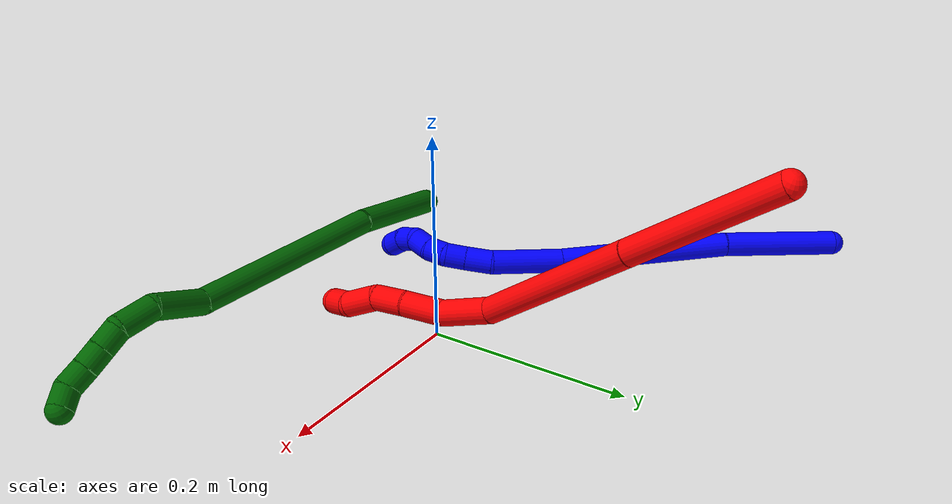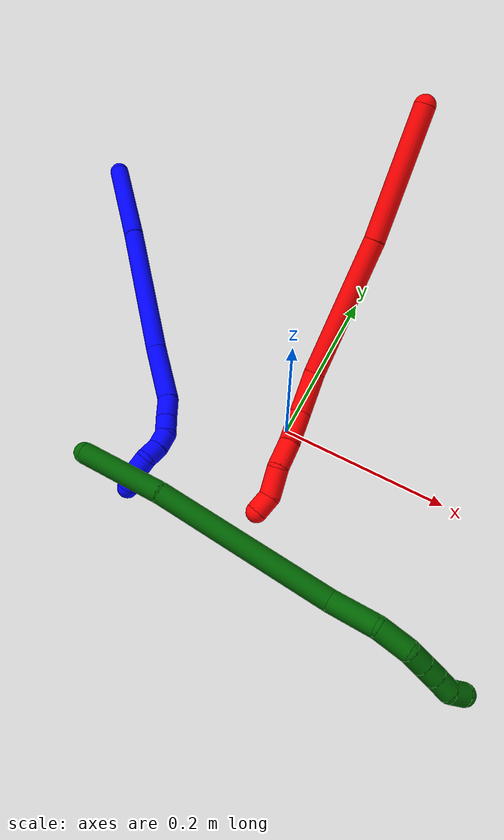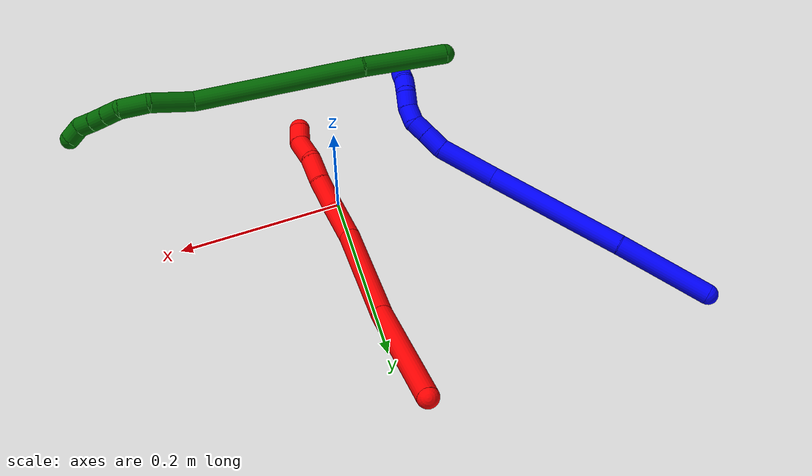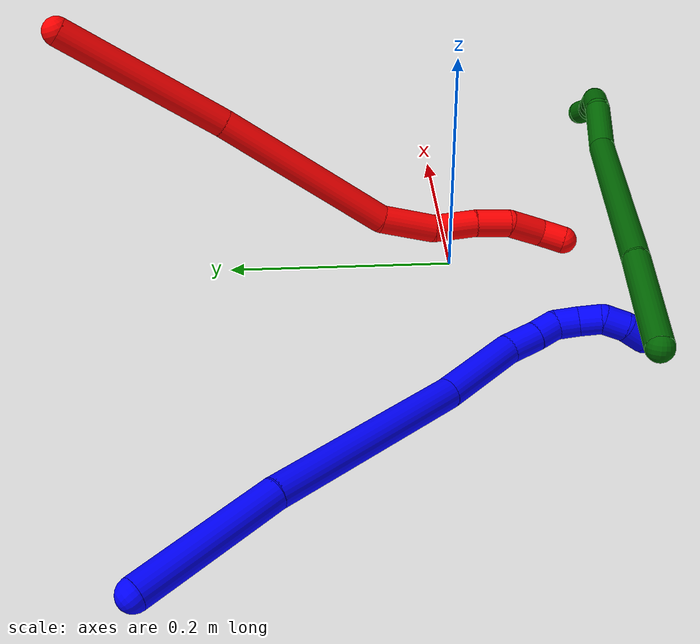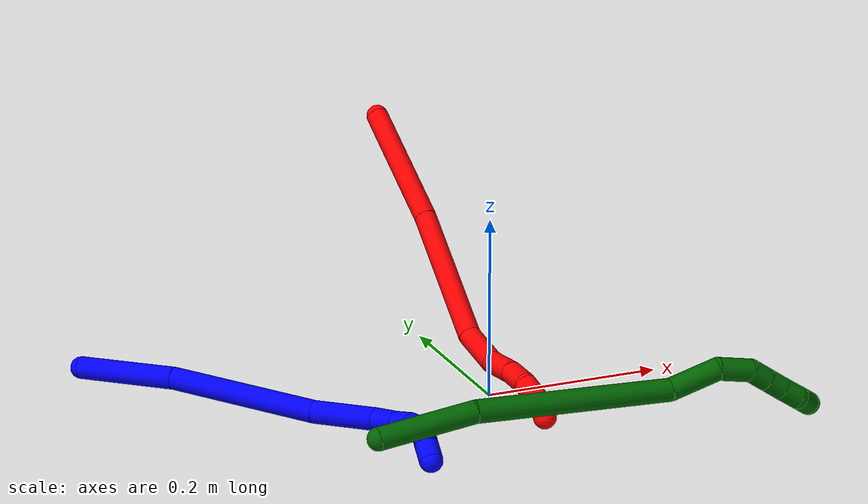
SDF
<sdf version="1.7">
 <world name="default">
  <model name="1">
   <static>0</static>
   <link name="1">
    <collision name="collision-cylinder-e_1_1_4">
     <pose>0.010332 -0.026176 -0.053137 2.68387 0.172684 0.711534</pose>
     <geometry><cylinder><radius>0.0125</radius><length>0.120258</length></cylinder></geometry>
     <surface>
      <friction><ode><mu>1.16</mu><mu2>1.16</mu2><slip1>0</slip1><slip2>0</slip2></ode></friction>
      <contact><ode><kp>1e+06</kp><kd>1</kd><max_vel>0</max_vel><min_depth>0.001</min_depth></ode></contact>
     </surface>
    </collision>
    <visual name="visual-cylinder-e_1_1_4">
     <pose>0.010332 -0.026176 -0.053137 2.68387 0.172684 0.711534</pose>
     <geometry><cylinder><radius>0.0125</radius><length>0.120258</length></cylinder></geometry>
     <material><ambient>0 0 1 1</ambient></material>
    </visual>
    <collision name="collision-cylinder-e_2_4_5">
     <pose>0.043731 -0.094124 -0.180618 2.62968 0.264189 0.939612</pose>
     <geometry><cylinder><radius>0.0125</radius><length>0.17668</length></cylinder></geometry>
     <surface>
      <friction><ode><mu>1.16</mu><mu2>1.16</mu2><slip1>0</slip1><slip2>0</slip2></ode></friction>
      <contact><ode><kp>1e+06</kp><kd>1</kd><max_vel>0</max_vel><min_depth>0.001</min_depth></ode></contact>
     </surface>
    </collision>
    <visual name="visual-cylinder-e_2_4_5">
     <pose>0.043731 -0.094124 -0.180618 2.62968 0.264189 0.939612</pose>
     <geometry><cylinder><radius>0.0125</radius><length>0.17668</length></cylinder></geometry>
     <material><ambient>0 0 1 1</ambient></material>
    </visual>
    <collision name="collision-cylinder-e_3_5_6">
     <pose>0.073075 -0.152246 -0.287504 2.67599 0.170642 0.692398</pose>
     <geometry><cylinder><radius>0.0125</radius><length>0.073912</length></cylinder></geometry>
     <surface>
      <friction><ode><mu>1.16</mu><mu2>1.16</mu2><slip1>0</slip1><slip2>0</slip2></ode></friction>
      <contact><ode><kp>1e+06</kp><kd>1</kd><max_vel>0</max_vel><min_depth>0.001</min_depth></ode></contact>
     </surface>
    </collision>
    <visual name="visual-cylinder-e_3_5_6">
     <pose>0.073075 -0.152246 -0.287504 2.67599 0.170642 0.692398</pose>
     <geometry><cylinder><radius>0.0125</radius><length>0.073912</length></cylinder></geometry>
     <material><ambient>0 0 1 1</ambient></material>
    </visual>
    <collision name="collision-cylinder-e_4_6_7">
     <pose>0.083442 -0.171438 -0.332986 2.92552 0.299568 1.89527</pose>
     <geometry><cylinder><radius>0.0125</radius><length>0.02773</length></cylinder></geometry>
     <surface>
      <friction><ode><mu>1.16</mu><mu2>1.16</mu2><slip1>0</slip1><slip2>0</slip2></ode></friction>
      <contact><ode><kp>1e+06</kp><kd>1</kd><max_vel>0</max_vel><min_depth>0.001</min_depth></ode></contact>
     </surface>
    </collision>
    <visual name="visual-cylinder-e_4_6_7">
     <pose>0.083442 -0.171438 -0.332986 2.92552 0.299568 1.89527</pose>
     <geometry><cylinder><radius>0.0125</radius><length>0.02773</length></cylinder></geometry>
     <material><ambient>0 0 1 1</ambient></material>
    </visual>
    <collision name="collision-cylinder-e_5_7_8">
     <pose>0.089874 -0.176512 -0.355925 2.92177 0.224481 1.59196</pose>
     <geometry><cylinder><radius>0.0125</radius><length>0.021021</length></cylinder></geometry>
     <surface>
      <friction><ode><mu>1.16</mu><mu2>1.16</mu2><slip1>0</slip1><slip2>0</slip2></ode></friction>
      <contact><ode><kp>1e+06</kp><kd>1</kd><max_vel>0</max_vel><min_depth>0.001</min_depth></ode></contact>
     </surface>
    </collision>
    <visual name="visual-cylinder-e_5_7_8">
     <pose>0.089874 -0.176512 -0.355925 2.92177 0.224481 1.59196</pose>
     <geometry><cylinder><radius>0.0125</radius><length>0.021021</length></cylinder></geometry>
     <material><ambient>0 0 1 1</ambient></material>
    </visual>
    <collision name="collision-cylinder-e_6_8_9">
     <pose>0.097422 -0.177469 -0.374538 -2.99431 0.539148 -2.61973</pose>
     <geometry><cylinder><radius>0.0125</radius><length>0.020291</length></cylinder></geometry>
     <surface>
      <friction><ode><mu>1.16</mu><mu2>1.16</mu2><slip1>0</slip1><slip2>0</slip2></ode></friction>
      <contact><ode><kp>1e+06</kp><kd>1</kd><max_vel>0</max_vel><min_depth>0.001</min_depth></ode></contact>
     </surface>
    </collision>
    <visual name="visual-cylinder-e_6_8_9">
     <pose>0.097422 -0.177469 -0.374538 -2.99431 0.539148 -2.61973</pose>
     <geometry><cylinder><radius>0.0125</radius><length>0.020291</length></cylinder></geometry>
     <material><ambient>0 0 1 1</ambient></material>
    </visual>
    <collision name="collision-cylinder-e_7_9_10">
     <pose>0.107612 -0.172292 -0.390943 -2.67765 0.519259 -1.68783</pose>
     <geometry><cylinder><radius>0.0125</radius><length>0.020074</length></cylinder></geometry>
     <surface>
      <friction><ode><mu>1.16</mu><mu2>1.16</mu2><slip1>0</slip1><slip2>0</slip2></ode></friction>
      <contact><ode><kp>1e+06</kp><kd>1</kd><max_vel>0</max_vel><min_depth>0.001</min_depth></ode></contact>
     </surface>
    </collision>
    <visual name="visual-cylinder-e_7_9_10">
     <pose>0.107612 -0.172292 -0.390943 -2.67765 0.519259 -1.68783</pose>
     <geometry><cylinder><radius>0.0125</radius><length>0.020074</length></cylinder></geometry>
     <material><ambient>0 0 1 1</ambient></material>
    </visual>
    <collision name="collision-cylinder-e_8_10_11">
     <pose>0.121041 -0.167146 -0.403945 -2.90668 1.00579 -2.71896</pose>
     <geometry><cylinder><radius>0.0125</radius><length>0.020007</length></cylinder></geometry>
     <surface>
      <friction><ode><mu>1.16</mu><mu2>1.16</mu2><slip1>0</slip1><slip2>0</slip2></ode></friction>
      <contact><ode><kp>1e+06</kp><kd>1</kd><max_vel>0</max_vel><min_depth>0.001</min_depth></ode></contact>
     </surface>
    </collision>
    <visual name="visual-cylinder-e_8_10_11">
     <pose>0.121041 -0.167146 -0.403945 -2.90668 1.00579 -2.71896</pose>
     <geometry><cylinder><radius>0.0125</radius><length>0.020007</length></cylinder></geometry>
     <material><ambient>0 0 1 1</ambient></material>
    </visual>
    <collision name="collision-cylinder-e_9_11_2">
     <pose>0.138778 -0.167239 -0.412647 2.77533 1.18789 2.60623</pose>
     <geometry><cylinder><radius>0.0125</radius><length>0.020026</length></cylinder></geometry>
     <surface>
      <friction><ode><mu>1.16</mu><mu2>1.16</mu2><slip1>0</slip1><slip2>0</slip2></ode></friction>
      <contact><ode><kp>1e+06</kp><kd>1</kd><max_vel>0</max_vel><min_depth>0.001</min_depth></ode></contact>
     </surface>
    </collision>
    <visual name="visual-cylinder-e_9_11_2">
     <pose>0.138778 -0.167239 -0.412647 2.77533 1.18789 2.60623</pose>
     <geometry><cylinder><radius>0.0125</radius><length>0.020026</length></cylinder></geometry>
     <material><ambient>0 0 1 1</ambient></material>
    </visual>
    <collision name="collision-sphere-2">
     <pose>0.148067 -0.168579 -0.41614 0 -0 0</pose>
     <geometry><sphere><radius>0.0125</radius></sphere></geometry>
     <surface>
      <friction><ode><mu>1.16</mu><mu2>1.16</mu2><slip1>0</slip1><slip2>0</slip2></ode></friction>
      <contact><ode><kp>1e+06</kp><kd>1</kd><max_vel>0</max_vel><min_depth>0.001</min_depth></ode></contact>
     </surface>
    </collision>
    <visual name="visual-sphere-2">
     <pose>0.148067 -0.168579 -0.41614 0 -0 0</pose>
     <geometry><sphere><radius>0.0125</radius></sphere></geometry>
     <material><ambient>0 0 1 1</ambient></material>
    </visual>
    <collision name="collision-sphere-11">
     <pose>0.12949 -0.165899 -0.409154 0 -0 0</pose>
     <geometry><sphere><radius>0.0125</radius></sphere></geometry>
     <surface>
      <friction><ode><mu>1.16</mu><mu2>1.16</mu2><slip1>0</slip1><slip2>0</slip2></ode></friction>
      <contact><ode><kp>1e+06</kp><kd>1</kd><max_vel>0</max_vel><min_depth>0.001</min_depth></ode></contact>
     </surface>
    </collision>
    <visual name="visual-sphere-11">
     <pose>0.12949 -0.165899 -0.409154 0 -0 0</pose>
     <geometry><sphere><radius>0.0125</radius></sphere></geometry>
     <material><ambient>0 0 1 1</ambient></material>
    </visual>
    <collision name="collision-sphere-10">
     <pose>0.112593 -0.168392 -0.398736 0 -0 0</pose>
     <geometry><sphere><radius>0.0125</radius></sphere></geometry>
     <surface>
      <friction><ode><mu>1.16</mu><mu2>1.16</mu2><slip1>0</slip1><slip2>0</slip2></ode></friction>
      <contact><ode><kp>1e+06</kp><kd>1</kd><max_vel>0</max_vel><min_depth>0.001</min_depth></ode></contact>
     </surface>
    </collision>
    <visual name="visual-sphere-10">
     <pose>0.112593 -0.168392 -0.398736 0 -0 0</pose>
     <geometry><sphere><radius>0.0125</radius></sphere></geometry>
     <material><ambient>0 0 1 1</ambient></material>
    </visual>
    <collision name="collision-sphere-9">
     <pose>0.102631 -0.176191 -0.38315 0 -0 0</pose>
     <geometry><sphere><radius>0.0125</radius></sphere></geometry>
     <surface>
      <friction><ode><mu>1.16</mu><mu2>1.16</mu2><slip1>0</slip1><slip2>0</slip2></ode></friction>
      <contact><ode><kp>1e+06</kp><kd>1</kd><max_vel>0</max_vel><min_depth>0.001</min_depth></ode></contact>
     </surface>
    </collision>
    <visual name="visual-sphere-9">
     <pose>0.102631 -0.176191 -0.38315 0 -0 0</pose>
     <geometry><sphere><radius>0.0125</radius></sphere></geometry>
     <material><ambient>0 0 1 1</ambient></material>
    </visual>
    <collision name="collision-sphere-4">
     <pose>0.020664 -0.052353 -0.106274 0 -0 0</pose>
     <geometry><sphere><radius>0.0125</radius></sphere></geometry>
     <surface>
      <friction><ode><mu>1.16</mu><mu2>1.16</mu2><slip1>0</slip1><slip2>0</slip2></ode></friction>
      <contact><ode><kp>1e+06</kp><kd>1</kd><max_vel>0</max_vel><min_depth>0.001</min_depth></ode></contact>
     </surface>
    </collision>
    <visual name="visual-sphere-4">
     <pose>0.020664 -0.052353 -0.106274 0 -0 0</pose>
     <geometry><sphere><radius>0.0125</radius></sphere></geometry>
     <material><ambient>0 0 1 1</ambient></material>
    </visual>
    <collision name="collision-sphere-1">
     <geometry><sphere><radius>0.0125</radius></sphere></geometry>
     <surface>
      <friction><ode><mu>1.16</mu><mu2>1.16</mu2><slip1>0</slip1><slip2>0</slip2></ode></friction>
      <contact><ode><kp>1e+06</kp><kd>1</kd><max_vel>0</max_vel><min_depth>0.001</min_depth></ode></contact>
     </surface>
    </collision>
    <visual name="visual-sphere-1">
     <geometry><sphere><radius>0.0125</radius></sphere></geometry>
     <material><ambient>0 0 1 1</ambient></material>
    </visual>
    <collision name="collision-sphere-8">
     <pose>0.092213 -0.178747 -0.365926 0 -0 0</pose>
     <geometry><sphere><radius>0.0125</radius></sphere></geometry>
     <surface>
      <friction><ode><mu>1.16</mu><mu2>1.16</mu2><slip1>0</slip1><slip2>0</slip2></ode></friction>
      <contact><ode><kp>1e+06</kp><kd>1</kd><max_vel>0</max_vel><min_depth>0.001</min_depth></ode></contact>
     </surface>
    </collision>
    <visual name="visual-sphere-8">
     <pose>0.092213 -0.178747 -0.365926 0 -0 0</pose>
     <geometry><sphere><radius>0.0125</radius></sphere></geometry>
     <material><ambient>0 0 1 1</ambient></material>
    </visual>
    <collision name="collision-sphere-5">
     <pose>0.066799 -0.135896 -0.254961 0 -0 0</pose>
     <geometry><sphere><radius>0.0125</radius></sphere></geometry>
     <surface>
      <friction><ode><mu>1.16</mu><mu2>1.16</mu2><slip1>0</slip1><slip2>0</slip2></ode></friction>
      <contact><ode><kp>1e+06</kp><kd>1</kd><max_vel>0</max_vel><min_depth>0.001</min_depth></ode></contact>
     </surface>
    </collision>
    <visual name="visual-sphere-5">
     <pose>0.066799 -0.135896 -0.254961 0 -0 0</pose>
     <geometry><sphere><radius>0.0125</radius></sphere></geometry>
     <material><ambient>0 0 1 1</ambient></material>
    </visual>
    <collision name="collision-sphere-6">
     <pose>0.079351 -0.168597 -0.320046 0 -0 0</pose>
     <geometry><sphere><radius>0.0125</radius></sphere></geometry>
     <surface>
      <friction><ode><mu>1.16</mu><mu2>1.16</mu2><slip1>0</slip1><slip2>0</slip2></ode></friction>
      <contact><ode><kp>1e+06</kp><kd>1</kd><max_vel>0</max_vel><min_depth>0.001</min_depth></ode></contact>
     </surface>
    </collision>
    <visual name="visual-sphere-6">
     <pose>0.079351 -0.168597 -0.320046 0 -0 0</pose>
     <geometry><sphere><radius>0.0125</radius></sphere></geometry>
     <material><ambient>0 0 1 1</ambient></material>
    </visual>
    <collision name="collision-sphere-7">
     <pose>0.087534 -0.174278 -0.345925 0 -0 0</pose>
     <geometry><sphere><radius>0.0125</radius></sphere></geometry>
     <surface>
      <friction><ode><mu>1.16</mu><mu2>1.16</mu2><slip1>0</slip1><slip2>0</slip2></ode></friction>
      <contact><ode><kp>1e+06</kp><kd>1</kd><max_vel>0</max_vel><min_depth>0.001</min_depth></ode></contact>
     </surface>
    </collision>
    <visual name="visual-sphere-7">
     <pose>0.087534 -0.174278 -0.345925 0 -0 0</pose>
     <geometry><sphere><radius>0.0125</radius></sphere></geometry>
     <material><ambient>0 0 1 1</ambient></material>
    </visual>
    <inertial>
     <pose>0.055822 -0.106496 -0.216121 0 -0 0</pose>
     <mass>0.5</mass>
     <inertia>
      <ixx>0.000898</ixx>
      <ixy>0</ixy>
      <ixz>0</ixz>
      <iyy>0.000168</iyy>
      <iyz>0</iyz>
      <izz>0.000111</izz>
     </inertia>
    </inertial>
   </link>
   <pose>-0.388409 0.247807 0.001604 2.29677 0.793264 -2.09991</pose>
  </model>
  <model name="2">
   <static>0</static>
   <link name="2">
    <collision name="collision-cylinder-e_1_1_4">
     <pose>0.014368 -0.043693 -0.062184 2.5291 0.186843 0.576149</pose>
     <geometry><cylinder><radius>0.0125</radius><length>0.154691</length></cylinder></geometry>
     <surface>
      <friction><ode><mu>1.16</mu><mu2>1.16</mu2><slip1>0</slip1><slip2>0</slip2></ode></friction>
      <contact><ode><kp>1e+06</kp><kd>1</kd><max_vel>0</max_vel><min_depth>0.001</min_depth></ode></contact>
     </surface>
    </collision>
    <visual name="visual-cylinder-e_1_1_4">
     <pose>0.014368 -0.043693 -0.062184 2.5291 0.186843 0.576149</pose>
     <geometry><cylinder><radius>0.0125</radius><length>0.154691</length></cylinder></geometry>
     <material><ambient>1 0 0 1</ambient></material>
    </visual>
    <collision name="collision-cylinder-e_2_4_5">
     <pose>0.038106 -0.134049 -0.192476 2.54091 0.113019 0.361326</pose>
     <geometry><cylinder><radius>0.0125</radius><length>0.166181</length></cylinder></geometry>
     <surface>
      <friction><ode><mu>1.16</mu><mu2>1.16</mu2><slip1>0</slip1><slip2>0</slip2></ode></friction>
      <contact><ode><kp>1e+06</kp><kd>1</kd><max_vel>0</max_vel><min_depth>0.001</min_depth></ode></contact>
     </surface>
    </collision>
    <visual name="visual-cylinder-e_2_4_5">
     <pose>0.038106 -0.134049 -0.192476 2.54091 0.113019 0.361326</pose>
     <geometry><cylinder><radius>0.0125</radius><length>0.166181</length></cylinder></geometry>
     <material><ambient>1 0 0 1</ambient></material>
    </visual>
    <collision name="collision-cylinder-e_3_5_6">
     <pose>0.053776 -0.20048 -0.27548 2.21658 0.249193 0.492226</pose>
     <geometry><cylinder><radius>0.0125</radius><length>0.051081</length></cylinder></geometry>
     <surface>
      <friction><ode><mu>1.16</mu><mu2>1.16</mu2><slip1>0</slip1><slip2>0</slip2></ode></friction>
      <contact><ode><kp>1e+06</kp><kd>1</kd><max_vel>0</max_vel><min_depth>0.001</min_depth></ode></contact>
     </surface>
    </collision>
    <visual name="visual-cylinder-e_3_5_6">
     <pose>0.053776 -0.20048 -0.27548 2.21658 0.249193 0.492226</pose>
     <geometry><cylinder><radius>0.0125</radius><length>0.051081</length></cylinder></geometry>
     <material><ambient>1 0 0 1</ambient></material>
    </visual>
    <collision name="collision-cylinder-e_4_6_7">
     <pose>0.065308 -0.238382 -0.296222 1.88264 0.268052 0.366119</pose>
     <geometry><cylinder><radius>0.0125</radius><length>0.039518</length></cylinder></geometry>
     <surface>
      <friction><ode><mu>1.16</mu><mu2>1.16</mu2><slip1>0</slip1><slip2>0</slip2></ode></friction>
      <contact><ode><kp>1e+06</kp><kd>1</kd><max_vel>0</max_vel><min_depth>0.001</min_depth></ode></contact>
     </surface>
    </collision>
    <visual name="visual-cylinder-e_4_6_7">
     <pose>0.065308 -0.238382 -0.296222 1.88264 0.268052 0.366119</pose>
     <geometry><cylinder><radius>0.0125</radius><length>0.039518</length></cylinder></geometry>
     <material><ambient>1 0 0 1</ambient></material>
    </visual>
    <collision name="collision-cylinder-e_5_7_8">
     <pose>0.073461 -0.270869 -0.30829 1.97982 0.184542 0.280083</pose>
     <geometry><cylinder><radius>0.0125</radius><length>0.031828</length></cylinder></geometry>
     <surface>
      <friction><ode><mu>1.16</mu><mu2>1.16</mu2><slip1>0</slip1><slip2>0</slip2></ode></friction>
      <contact><ode><kp>1e+06</kp><kd>1</kd><max_vel>0</max_vel><min_depth>0.001</min_depth></ode></contact>
     </surface>
    </collision>
    <visual name="visual-cylinder-e_5_7_8">
     <pose>0.073461 -0.270869 -0.30829 1.97982 0.184542 0.280083</pose>
     <geometry><cylinder><radius>0.0125</radius><length>0.031828</length></cylinder></geometry>
     <material><ambient>1 0 0 1</ambient></material>
    </visual>
    <collision name="collision-cylinder-e_6_8_9">
     <pose>0.081306 -0.296788 -0.325903 2.34865 0.294543 0.681092</pose>
     <geometry><cylinder><radius>0.0125</radius><length>0.033929</length></cylinder></geometry>
     <surface>
      <friction><ode><mu>1.16</mu><mu2>1.16</mu2><slip1>0</slip1><slip2>0</slip2></ode></friction>
      <contact><ode><kp>1e+06</kp><kd>1</kd><max_vel>0</max_vel><min_depth>0.001</min_depth></ode></contact>
     </surface>
    </collision>
    <visual name="visual-cylinder-e_6_8_9">
     <pose>0.081306 -0.296788 -0.325903 2.34865 0.294543 0.681092</pose>
     <geometry><cylinder><radius>0.0125</radius><length>0.033929</length></cylinder></geometry>
     <material><ambient>1 0 0 1</ambient></material>
    </visual>
    <collision name="collision-cylinder-e_7_9_2">
     <pose>0.084945 -0.31765 -0.343743 2.17712 -0.11316 -0.21557</pose>
     <geometry><cylinder><radius>0.0125</radius><length>0.022773</length></cylinder></geometry>
     <surface>
      <friction><ode><mu>1.16</mu><mu2>1.16</mu2><slip1>0</slip1><slip2>0</slip2></ode></friction>
      <contact><ode><kp>1e+06</kp><kd>1</kd><max_vel>0</max_vel><min_depth>0.001</min_depth></ode></contact>
     </surface>
    </collision>
    <visual name="visual-cylinder-e_7_9_2">
     <pose>0.084945 -0.31765 -0.343743 2.17712 -0.11316 -0.21557</pose>
     <geometry><cylinder><radius>0.0125</radius><length>0.022773</length></cylinder></geometry>
     <material><ambient>1 0 0 1</ambient></material>
    </visual>
    <collision name="collision-sphere-2">
     <pose>0.083659 -0.326947 -0.35019 0 -0 0</pose>
     <geometry><sphere><radius>0.0125</radius></sphere></geometry>
     <surface>
      <friction><ode><mu>1.16</mu><mu2>1.16</mu2><slip1>0</slip1><slip2>0</slip2></ode></friction>
      <contact><ode><kp>1e+06</kp><kd>1</kd><max_vel>0</max_vel><min_depth>0.001</min_depth></ode></contact>
     </surface>
    </collision>
    <visual name="visual-sphere-2">
     <pose>0.083659 -0.326947 -0.35019 0 -0 0</pose>
     <geometry><sphere><radius>0.0125</radius></sphere></geometry>
     <material><ambient>1 0 0 1</ambient></material>
    </visual>
    <collision name="collision-sphere-9">
     <pose>0.086231 -0.308353 -0.337296 0 -0 0</pose>
     <geometry><sphere><radius>0.0125</radius></sphere></geometry>
     <surface>
      <friction><ode><mu>1.16</mu><mu2>1.16</mu2><slip1>0</slip1><slip2>0</slip2></ode></friction>
      <contact><ode><kp>1e+06</kp><kd>1</kd><max_vel>0</max_vel><min_depth>0.001</min_depth></ode></contact>
     </surface>
    </collision>
    <visual name="visual-sphere-9">
     <pose>0.086231 -0.308353 -0.337296 0 -0 0</pose>
     <geometry><sphere><radius>0.0125</radius></sphere></geometry>
     <material><ambient>1 0 0 1</ambient></material>
    </visual>
    <collision name="collision-sphere-4">
     <pose>0.028735 -0.087386 -0.124368 0 -0 0</pose>
     <geometry><sphere><radius>0.0125</radius></sphere></geometry>
     <surface>
      <friction><ode><mu>1.16</mu><mu2>1.16</mu2><slip1>0</slip1><slip2>0</slip2></ode></friction>
      <contact><ode><kp>1e+06</kp><kd>1</kd><max_vel>0</max_vel><min_depth>0.001</min_depth></ode></contact>
     </surface>
    </collision>
    <visual name="visual-sphere-4">
     <pose>0.028735 -0.087386 -0.124368 0 -0 0</pose>
     <geometry><sphere><radius>0.0125</radius></sphere></geometry>
     <material><ambient>1 0 0 1</ambient></material>
    </visual>
    <collision name="collision-sphere-1">
     <geometry><sphere><radius>0.0125</radius></sphere></geometry>
     <surface>
      <friction><ode><mu>1.16</mu><mu2>1.16</mu2><slip1>0</slip1><slip2>0</slip2></ode></friction>
      <contact><ode><kp>1e+06</kp><kd>1</kd><max_vel>0</max_vel><min_depth>0.001</min_depth></ode></contact>
     </surface>
    </collision>
    <visual name="visual-sphere-1">
     <geometry><sphere><radius>0.0125</radius></sphere></geometry>
     <material><ambient>1 0 0 1</ambient></material>
    </visual>
    <collision name="collision-sphere-8">
     <pose>0.076381 -0.285223 -0.314511 0 -0 0</pose>
     <geometry><sphere><radius>0.0125</radius></sphere></geometry>
     <surface>
      <friction><ode><mu>1.16</mu><mu2>1.16</mu2><slip1>0</slip1><slip2>0</slip2></ode></friction>
      <contact><ode><kp>1e+06</kp><kd>1</kd><max_vel>0</max_vel><min_depth>0.001</min_depth></ode></contact>
     </surface>
    </collision>
    <visual name="visual-sphere-8">
     <pose>0.076381 -0.285223 -0.314511 0 -0 0</pose>
     <geometry><sphere><radius>0.0125</radius></sphere></geometry>
     <material><ambient>1 0 0 1</ambient></material>
    </visual>
    <collision name="collision-sphere-5">
     <pose>0.047477 -0.180713 -0.260584 0 -0 0</pose>
     <geometry><sphere><radius>0.0125</radius></sphere></geometry>
     <surface>
      <friction><ode><mu>1.16</mu><mu2>1.16</mu2><slip1>0</slip1><slip2>0</slip2></ode></friction>
      <contact><ode><kp>1e+06</kp><kd>1</kd><max_vel>0</max_vel><min_depth>0.001</min_depth></ode></contact>
     </surface>
    </collision>
    <visual name="visual-sphere-5">
     <pose>0.047477 -0.180713 -0.260584 0 -0 0</pose>
     <geometry><sphere><radius>0.0125</radius></sphere></geometry>
     <material><ambient>1 0 0 1</ambient></material>
    </visual>
    <collision name="collision-sphere-6">
     <pose>0.060074 -0.220248 -0.290376 0 -0 0</pose>
     <geometry><sphere><radius>0.0125</radius></sphere></geometry>
     <surface>
      <friction><ode><mu>1.16</mu><mu2>1.16</mu2><slip1>0</slip1><slip2>0</slip2></ode></friction>
      <contact><ode><kp>1e+06</kp><kd>1</kd><max_vel>0</max_vel><min_depth>0.001</min_depth></ode></contact>
     </surface>
    </collision>
    <visual name="visual-sphere-6">
     <pose>0.060074 -0.220248 -0.290376 0 -0 0</pose>
     <geometry><sphere><radius>0.0125</radius></sphere></geometry>
     <material><ambient>1 0 0 1</ambient></material>
    </visual>
    <collision name="collision-sphere-7">
     <pose>0.070541 -0.256516 -0.302068 0 -0 0</pose>
     <geometry><sphere><radius>0.0125</radius></sphere></geometry>
     <surface>
      <friction><ode><mu>1.16</mu><mu2>1.16</mu2><slip1>0</slip1><slip2>0</slip2></ode></friction>
      <contact><ode><kp>1e+06</kp><kd>1</kd><max_vel>0</max_vel><min_depth>0.001</min_depth></ode></contact>
     </surface>
    </collision>
    <visual name="visual-sphere-7">
     <pose>0.070541 -0.256516 -0.302068 0 -0 0</pose>
     <geometry><sphere><radius>0.0125</radius></sphere></geometry>
     <material><ambient>1 0 0 1</ambient></material>
    </visual>
    <inertial>
     <pose>0.041828 -0.149242 -0.192161 0 -0 0</pose>
     <mass>0.5</mass>
     <inertia>
      <ixx>0.00097</ixx>
      <ixy>0</ixy>
      <ixz>0</ixz>
      <iyy>-0.000209</iyy>
      <iyz>0</iyz>
      <izz>0.000284</izz>
     </inertia>
    </inertial>
   </link>
   <pose>-0.001557 0.325352 0.231564 -0.351773 0.051142 -0.125463</pose>
  </model>
  <model name="6">
   <static>0</static>
   <link name="6">
    <collision name="collision-cylinder-e_1_1_4">
     <pose>0.046522 0.006554 -0.024876 -2.88396 1.06568 -2.70917</pose>
     <geometry><cylinder><radius>0.0125</radius><length>0.106322</length></cylinder></geometry>
     <surface>
      <friction><ode><mu>1.16</mu><mu2>1.16</mu2><slip1>0</slip1><slip2>0</slip2></ode></friction>
      <contact><ode><kp>1e+06</kp><kd>1</kd><max_vel>0</max_vel><min_depth>0.001</min_depth></ode></contact>
     </surface>
    </collision>
    <visual name="visual-cylinder-e_1_1_4">
     <pose>0.046522 0.006554 -0.024876 -2.88396 1.06568 -2.70917</pose>
     <geometry><cylinder><radius>0.0125</radius><length>0.106322</length></cylinder></geometry>
     <material><ambient>0 0.392157 0.003922 1</ambient></material>
    </visual>
    <collision name="collision-cylinder-e_2_4_5">
     <pose>0.192477 0.032335 -0.085083 -2.64324 1.18639 -2.41979</pose>
     <geometry><cylinder><radius>0.0125</radius><length>0.214521</length></cylinder></geometry>
     <surface>
      <friction><ode><mu>1.16</mu><mu2>1.16</mu2><slip1>0</slip1><slip2>0</slip2></ode></friction>
      <contact><ode><kp>1e+06</kp><kd>1</kd><max_vel>0</max_vel><min_depth>0.001</min_depth></ode></contact>
     </surface>
    </collision>
    <visual name="visual-cylinder-e_2_4_5">
     <pose>0.192477 0.032335 -0.085083 -2.64324 1.18639 -2.41979</pose>
     <geometry><cylinder><radius>0.0125</radius><length>0.214521</length></cylinder></geometry>
     <material><ambient>0 0.392157 0.003922 1</ambient></material>
    </visual>
    <collision name="collision-cylinder-e_3_5_6">
     <pose>0.313581 0.055582 -0.137632 -2.91214 0.886475 -2.66535</pose>
     <geometry><cylinder><radius>0.0125</radius><length>0.055938</length></cylinder></geometry>
     <surface>
      <friction><ode><mu>1.16</mu><mu2>1.16</mu2><slip1>0</slip1><slip2>0</slip2></ode></friction>
      <contact><ode><kp>1e+06</kp><kd>1</kd><max_vel>0</max_vel><min_depth>0.001</min_depth></ode></contact>
     </surface>
    </collision>
    <visual name="visual-cylinder-e_3_5_6">
     <pose>0.313581 0.055582 -0.137632 -2.91214 0.886475 -2.66535</pose>
     <geometry><cylinder><radius>0.0125</radius><length>0.055938</length></cylinder></geometry>
     <material><ambient>0 0.392157 0.003922 1</ambient></material>
    </visual>
    <collision name="collision-cylinder-e_4_6_7">
     <pose>0.352832 0.064252 -0.158574 -2.24635 1.24403 -1.96143</pose>
     <geometry><cylinder><radius>0.0125</radius><length>0.037121</length></cylinder></geometry>
     <surface>
      <friction><ode><mu>1.16</mu><mu2>1.16</mu2><slip1>0</slip1><slip2>0</slip2></ode></friction>
      <contact><ode><kp>1e+06</kp><kd>1</kd><max_vel>0</max_vel><min_depth>0.001</min_depth></ode></contact>
     </surface>
    </collision>
    <visual name="visual-cylinder-e_4_6_7">
     <pose>0.352832 0.064252 -0.158574 -2.24635 1.24403 -1.96143</pose>
     <geometry><cylinder><radius>0.0125</radius><length>0.037121</length></cylinder></geometry>
     <material><ambient>0 0.392157 0.003922 1</ambient></material>
    </visual>
    <collision name="collision-cylinder-e_5_7_8">
     <pose>0.3807 0.071985 -0.159683 -0.867144 1.19627 -0.61115</pose>
     <geometry><cylinder><radius>0.0125</radius><length>0.022112</length></cylinder></geometry>
     <surface>
      <friction><ode><mu>1.16</mu><mu2>1.16</mu2><slip1>0</slip1><slip2>0</slip2></ode></friction>
      <contact><ode><kp>1e+06</kp><kd>1</kd><max_vel>0</max_vel><min_depth>0.001</min_depth></ode></contact>
     </surface>
    </collision>
    <visual name="visual-cylinder-e_5_7_8">
     <pose>0.3807 0.071985 -0.159683 -0.867144 1.19627 -0.61115</pose>
     <geometry><cylinder><radius>0.0125</radius><length>0.022112</length></cylinder></geometry>
     <material><ambient>0 0.392157 0.003922 1</ambient></material>
    </visual>
    <collision name="collision-cylinder-e_6_8_9">
     <pose>0.400733 0.078027 -0.154595 -0.874742 1.19416 -0.615561</pose>
     <geometry><cylinder><radius>0.0125</radius><length>0.020958</length></cylinder></geometry>
     <surface>
      <friction><ode><mu>1.16</mu><mu2>1.16</mu2><slip1>0</slip1><slip2>0</slip2></ode></friction>
      <contact><ode><kp>1e+06</kp><kd>1</kd><max_vel>0</max_vel><min_depth>0.001</min_depth></ode></contact>
     </surface>
    </collision>
    <visual name="visual-cylinder-e_6_8_9">
     <pose>0.400733 0.078027 -0.154595 -0.874742 1.19416 -0.615561</pose>
     <geometry><cylinder><radius>0.0125</radius><length>0.020958</length></cylinder></geometry>
     <material><ambient>0 0.392157 0.003922 1</ambient></material>
    </visual>
    <collision name="collision-cylinder-e_7_9_10">
     <pose>0.420731 0.084528 -0.149783 -0.987039 1.17811 -0.6901</pose>
     <geometry><cylinder><radius>0.0125</radius><length>0.022195</length></cylinder></geometry>
     <surface>
      <friction><ode><mu>1.16</mu><mu2>1.16</mu2><slip1>0</slip1><slip2>0</slip2></ode></friction>
      <contact><ode><kp>1e+06</kp><kd>1</kd><max_vel>0</max_vel><min_depth>0.001</min_depth></ode></contact>
     </surface>
    </collision>
    <visual name="visual-cylinder-e_7_9_10">
     <pose>0.420731 0.084528 -0.149783 -0.987039 1.17811 -0.6901</pose>
     <geometry><cylinder><radius>0.0125</radius><length>0.022195</length></cylinder></geometry>
     <material><ambient>0 0.392157 0.003922 1</ambient></material>
    </visual>
    <collision name="collision-cylinder-e_8_10_2">
     <pose>0.440823 0.086271 -0.144536 0.554727 1.23642 0.399565</pose>
     <geometry><cylinder><radius>0.0125</radius><length>0.020833</length></cylinder></geometry>
     <surface>
      <friction><ode><mu>1.16</mu><mu2>1.16</mu2><slip1>0</slip1><slip2>0</slip2></ode></friction>
      <contact><ode><kp>1e+06</kp><kd>1</kd><max_vel>0</max_vel><min_depth>0.001</min_depth></ode></contact>
     </surface>
    </collision>
    <visual name="visual-cylinder-e_8_10_2">
     <pose>0.440823 0.086271 -0.144536 0.554727 1.23642 0.399565</pose>
     <geometry><cylinder><radius>0.0125</radius><length>0.020833</length></cylinder></geometry>
     <material><ambient>0 0.392157 0.003922 1</ambient></material>
    </visual>
    <collision name="collision-sphere-2">
     <pose>0.450663 0.08447 -0.14163 0 -0 0</pose>
     <geometry><sphere><radius>0.0125</radius></sphere></geometry>
     <surface>
      <friction><ode><mu>1.16</mu><mu2>1.16</mu2><slip1>0</slip1><slip2>0</slip2></ode></friction>
      <contact><ode><kp>1e+06</kp><kd>1</kd><max_vel>0</max_vel><min_depth>0.001</min_depth></ode></contact>
     </surface>
    </collision>
    <visual name="visual-sphere-2">
     <pose>0.450663 0.08447 -0.14163 0 -0 0</pose>
     <geometry><sphere><radius>0.0125</radius></sphere></geometry>
     <material><ambient>0 0.392157 0.003922 1</ambient></material>
    </visual>
    <collision name="collision-sphere-10">
     <pose>0.430983 0.088071 -0.147442 0 -0 0</pose>
     <geometry><sphere><radius>0.0125</radius></sphere></geometry>
     <surface>
      <friction><ode><mu>1.16</mu><mu2>1.16</mu2><slip1>0</slip1><slip2>0</slip2></ode></friction>
      <contact><ode><kp>1e+06</kp><kd>1</kd><max_vel>0</max_vel><min_depth>0.001</min_depth></ode></contact>
     </surface>
    </collision>
    <visual name="visual-sphere-10">
     <pose>0.430983 0.088071 -0.147442 0 -0 0</pose>
     <geometry><sphere><radius>0.0125</radius></sphere></geometry>
     <material><ambient>0 0.392157 0.003922 1</ambient></material>
    </visual>
    <collision name="collision-sphere-9">
     <pose>0.410478 0.080985 -0.152124 0 -0 0</pose>
     <geometry><sphere><radius>0.0125</radius></sphere></geometry>
     <surface>
      <friction><ode><mu>1.16</mu><mu2>1.16</mu2><slip1>0</slip1><slip2>0</slip2></ode></friction>
      <contact><ode><kp>1e+06</kp><kd>1</kd><max_vel>0</max_vel><min_depth>0.001</min_depth></ode></contact>
     </surface>
    </collision>
    <visual name="visual-sphere-9">
     <pose>0.410478 0.080985 -0.152124 0 -0 0</pose>
     <geometry><sphere><radius>0.0125</radius></sphere></geometry>
     <material><ambient>0 0.392157 0.003922 1</ambient></material>
    </visual>
    <collision name="collision-sphere-4">
     <pose>0.093044 0.013109 -0.049752 0 -0 0</pose>
     <geometry><sphere><radius>0.0125</radius></sphere></geometry>
     <surface>
      <friction><ode><mu>1.16</mu><mu2>1.16</mu2><slip1>0</slip1><slip2>0</slip2></ode></friction>
      <contact><ode><kp>1e+06</kp><kd>1</kd><max_vel>0</max_vel><min_depth>0.001</min_depth></ode></contact>
     </surface>
    </collision>
    <visual name="visual-sphere-4">
     <pose>0.093044 0.013109 -0.049752 0 -0 0</pose>
     <geometry><sphere><radius>0.0125</radius></sphere></geometry>
     <material><ambient>0 0.392157 0.003922 1</ambient></material>
    </visual>
    <collision name="collision-sphere-1">
     <geometry><sphere><radius>0.0125</radius></sphere></geometry>
     <surface>
      <friction><ode><mu>1.16</mu><mu2>1.16</mu2><slip1>0</slip1><slip2>0</slip2></ode></friction>
      <contact><ode><kp>1e+06</kp><kd>1</kd><max_vel>0</max_vel><min_depth>0.001</min_depth></ode></contact>
     </surface>
    </collision>
    <visual name="visual-sphere-1">
     <geometry><sphere><radius>0.0125</radius></sphere></geometry>
     <material><ambient>0 0.392157 0.003922 1</ambient></material>
    </visual>
    <collision name="collision-sphere-8">
     <pose>0.390989 0.075069 -0.157066 0 -0 0</pose>
     <geometry><sphere><radius>0.0125</radius></sphere></geometry>
     <surface>
      <friction><ode><mu>1.16</mu><mu2>1.16</mu2><slip1>0</slip1><slip2>0</slip2></ode></friction>
      <contact><ode><kp>1e+06</kp><kd>1</kd><max_vel>0</max_vel><min_depth>0.001</min_depth></ode></contact>
     </surface>
    </collision>
    <visual name="visual-sphere-8">
     <pose>0.390989 0.075069 -0.157066 0 -0 0</pose>
     <geometry><sphere><radius>0.0125</radius></sphere></geometry>
     <material><ambient>0 0.392157 0.003922 1</ambient></material>
    </visual>
    <collision name="collision-sphere-5">
     <pose>0.291909 0.051561 -0.120414 0 -0 0</pose>
     <geometry><sphere><radius>0.0125</radius></sphere></geometry>
     <surface>
      <friction><ode><mu>1.16</mu><mu2>1.16</mu2><slip1>0</slip1><slip2>0</slip2></ode></friction>
      <contact><ode><kp>1e+06</kp><kd>1</kd><max_vel>0</max_vel><min_depth>0.001</min_depth></ode></contact>
     </surface>
    </collision>
    <visual name="visual-sphere-5">
     <pose>0.291909 0.051561 -0.120414 0 -0 0</pose>
     <geometry><sphere><radius>0.0125</radius></sphere></geometry>
     <material><ambient>0 0.392157 0.003922 1</ambient></material>
    </visual>
    <collision name="collision-sphere-6">
     <pose>0.335253 0.059603 -0.154849 0 -0 0</pose>
     <geometry><sphere><radius>0.0125</radius></sphere></geometry>
     <surface>
      <friction><ode><mu>1.16</mu><mu2>1.16</mu2><slip1>0</slip1><slip2>0</slip2></ode></friction>
      <contact><ode><kp>1e+06</kp><kd>1</kd><max_vel>0</max_vel><min_depth>0.001</min_depth></ode></contact>
     </surface>
    </collision>
    <visual name="visual-sphere-6">
     <pose>0.335253 0.059603 -0.154849 0 -0 0</pose>
     <geometry><sphere><radius>0.0125</radius></sphere></geometry>
     <material><ambient>0 0.392157 0.003922 1</ambient></material>
    </visual>
    <collision name="collision-sphere-7">
     <pose>0.37041 0.068901 -0.1623 0 -0 0</pose>
     <geometry><sphere><radius>0.0125</radius></sphere></geometry>
     <surface>
      <friction><ode><mu>1.16</mu><mu2>1.16</mu2><slip1>0</slip1><slip2>0</slip2></ode></friction>
      <contact><ode><kp>1e+06</kp><kd>1</kd><max_vel>0</max_vel><min_depth>0.001</min_depth></ode></contact>
     </surface>
    </collision>
    <visual name="visual-sphere-7">
     <pose>0.37041 0.068901 -0.1623 0 -0 0</pose>
     <geometry><sphere><radius>0.0125</radius></sphere></geometry>
     <material><ambient>0 0.392157 0.003922 1</ambient></material>
    </visual>
    <inertial>
     <pose>0.224427 0.040056 -0.095178 0 -0 0</pose>
     <mass>0.5</mass>
     <inertia>
      <ixx>-0.000487</ixx>
      <ixy>0</ixy>
      <ixz>0</ixz>
      <iyy>0.000692</iyy>
      <iyz>0</iyz>
      <izz>-0.001064</izz>
     </inertia>
    </inertial>
   </link>
   <pose>-0.185116 -0.142666 0.032287 -3.0064 0.320927 0.134855</pose>
  </model>
 </world>
</sdf>
